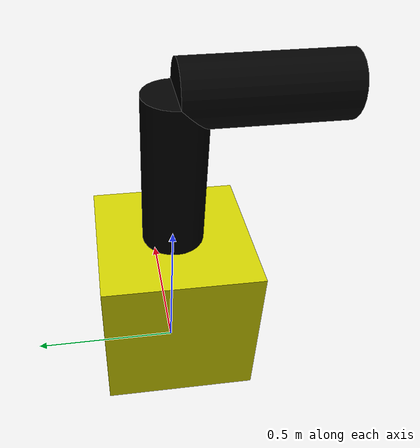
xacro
<?xml version="1.0" encoding="UTF-8"?>
<robot xmlns:xacro="http://www.ros.org/wiki/xacro"  name="RSP">

  <xacro:include filename="$(find robot_description)/urdf/robot.xacro" />

  <xacro:arg name="name" default="arm"/>
  <xacro:arg name="parent" default="world"/>

  <link name="$(arg parent)"/>
  <xacro:RSP name="$(arg name)" parent="$(arg parent)" />

</robot>

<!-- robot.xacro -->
<robot xmlns:xacro="http://www.ros.org/wiki/xacro">

  <xacro:macro name="RSP" params="name parent">

    <link name="${name}_link_0">
      <visual>
      	<origin xyz="0 0 0.25"  rpy="0 0 0"/>

        <geometry>
      	  <box size="0.5 0.5 0.5"/>
      	</geometry>

        <material name="yellow">
      	  <color rgba="0.8 0.8 0.0 1.0"/>
      	</material>

      </visual>
    </link>

    <link name="${name}_link_1">
      <visual>
      	<origin xyz="0 0 0.25"  rpy="0 0 0"/>

        <geometry>
      	  <cylinder length="0.5" radius="0.1"/>
      	</geometry>

        <material name="black">
      	  <color rgba="0.0 0.0 0.0 1.0"/>
      	</material>

      </visual>
    </link>

    <link name="${name}_link_2">
      <visual>
        <origin xyz="0 0 0.25" rpy="0 0 0"/>

        <geometry>
          <cylinder length="0.5" radius="0.1"/>
        </geometry>

        <material name="black">
          <color rgba="0.0 0.0 0.0 1.0"/>
        </material>

      </visual>
    </link>

    <link name="${name}_flange">

    </link>

    <joint name="${name}_base_joint" type="fixed">
      <parent link="${parent}"/>
      <child link="${name}_link_0"/>
    </joint>

    <joint name="${name}_joint_1" type="revolute">
      <parent link="${name}_link_0"/>
      <child link="${name}_link_1"/>
      <origin xyz="0 0 0.5" rpy="0 0 0"/>
      <axis xyz="0 0 1"/>
      <limit lower="-1" upper="1.0" effort="10.0" velocity="1.0"/>
    </joint>

    <joint name="${name}_joint_2" type="revolute">
      <parent link="${name}_link_1"/>
      <child link="${name}_link_2"/>
      <origin xyz="0 0 0.5" rpy="1.57 0 0"/>
      <limit lower="-1" upper="1.0" effort="10.0" velocity="1.0"/>
    </joint>

    <joint name="${name}_joint_tip" type="fixed">
      <parent link="${name}_link_2"/>
      <child link="${name}_flange"/>
      <origin xyz="0.0 0.0 0.5"/>
    </joint>

  </xacro:macro>

</robot>
